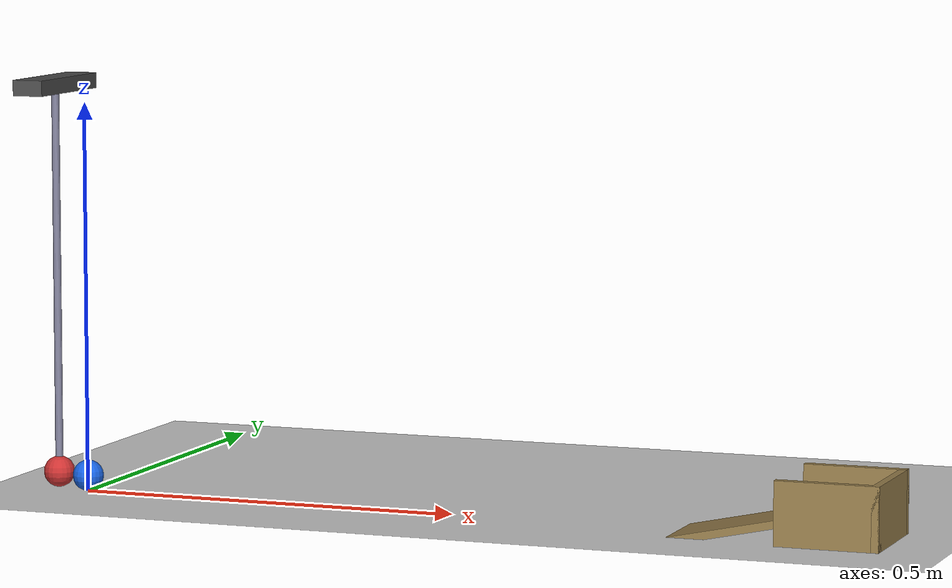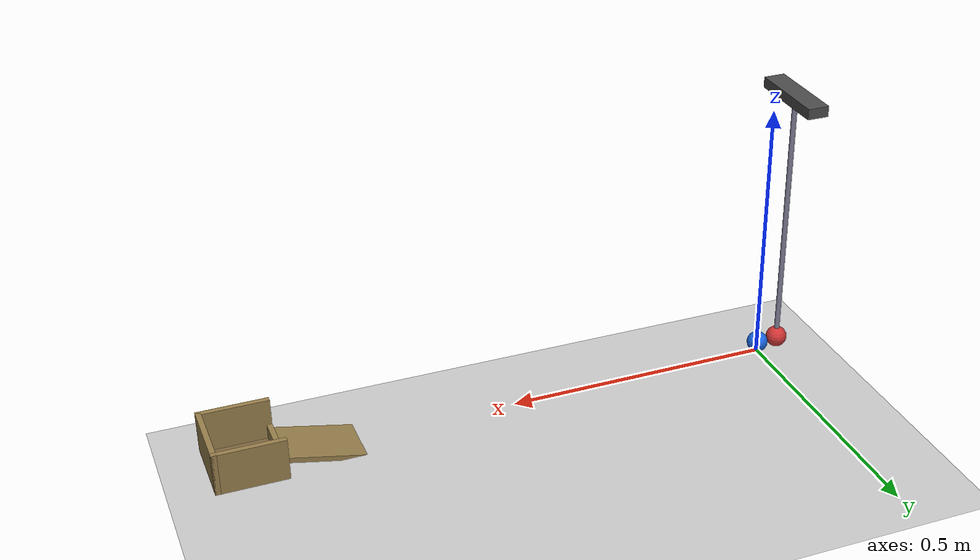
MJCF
<mujoco model="pendulum_ball_cup">
  <option timestep="0.002" gravity="0 0 -9.81"/>

  <worldbody>
    <light name="sun" pos="0.5 0 3" dir="0 0 -1" diffuse="0.8 0.8 0.8"/>
    <geom name="floor" type="plane" size="3 3 0.1" rgba="0.8 0.8 0.8 1"/>

    <!-- visual support beam at the pivot (no collisions) -->
    <geom name="support_beam" type="box" pos="-0.041 0 0.523" size="0.02 0.08 0.01" contype="0" conaffinity="0" rgba="0.3 0.3 0.3 1"/>

    <!-- pendulum: pivot 0.5 m above the bob's lowest point, bob just behind the ball -->
    <body name="pendulum" pos="-0.041 0 0.523">
      <joint name="pendulum_hinge" type="hinge" axis="0 1 0" pos="0 0 0"/>
      <geom name="pendulum_rod" type="capsule" fromto="0 0 0 0 0 -0.48" size="0.005" mass="0.02" rgba="0.5 0.5 0.6 1"/>
      <geom name="pendulum_bob" type="sphere" pos="0 0 -0.5" size="0.02" mass="0.3" rgba="0.8 0.2 0.2 1"/>
    </body>

    <!-- ball resting on the floor at the origin -->
    <body name="ball" pos="0 0 0.02">
      <freejoint name="ball_free"/>
      <geom name="ball" type="sphere" size="0.02" mass="0.03" friction="1 0.005 0.0001" rgba="0.1 0.4 0.9 1"/>
    </body>

    <!-- cup centred 1 m from the ball's start, with an entry ramp up to its low front lip -->
    <body name="cup" pos="1 0 0">
      <geom name="cup_ramp" type="box" pos="-0.13895 0 0.007968" euler="0 -12.1 0" size="0.08182 0.05 0.005" rgba="0.6 0.5 0.3 1"/>
      <geom name="cup_front_wall" type="box" pos="-0.06 0 0.015" size="0.005 0.065 0.015" rgba="0.6 0.5 0.3 1"/>
      <geom name="cup_back_wall" type="box" pos="0.06 0 0.04" size="0.005 0.07 0.04" rgba="0.6 0.5 0.3 1"/>
      <geom name="cup_side_left" type="box" pos="0 0.065 0.04" size="0.065 0.005 0.04" rgba="0.6 0.5 0.3 1"/>
      <geom name="cup_side_right" type="box" pos="0 -0.065 0.04" size="0.065 0.005 0.04" rgba="0.6 0.5 0.3 1"/>
      <geom name="cup_base" type="box" pos="0 0 0.001" size="0.055 0.06 0.001" condim="6" friction="1 0.01 0.01" rgba="0.5 0.4 0.25 1"/>
    </body>
  </worldbody>

  <keyframe>
    <key name="start" qpos="0.8727 0 0 0.02 1 0 0 0" qvel="0 0 0 0 0 0 0"/>
  </keyframe>
</mujoco>
